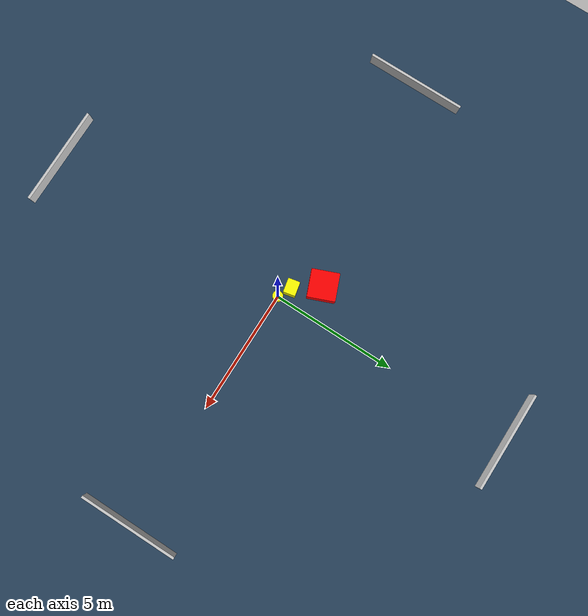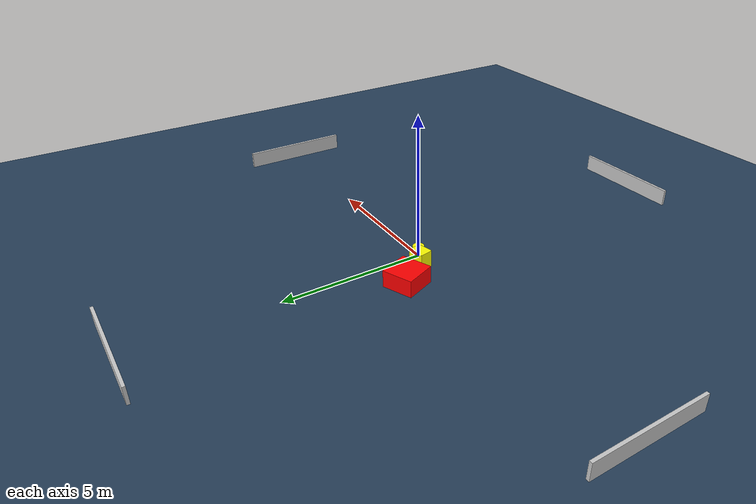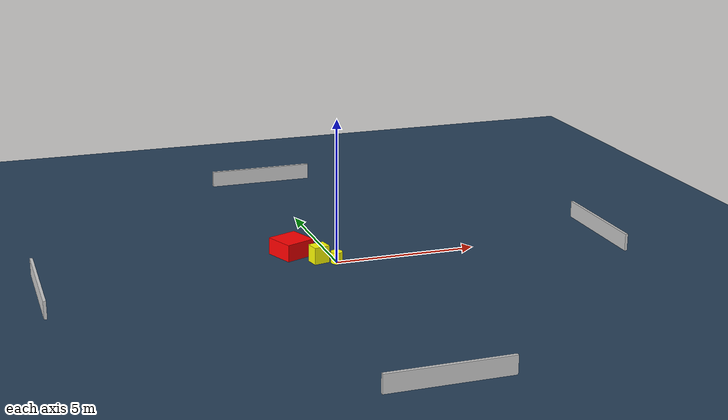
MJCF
<?xml version="1.0" ?>
<mujoco model="generated_environment">
  <option timestep="0.01" integrator="RK4" cone="elliptic"/>
  <default>
    <geom density="1"/>
  </default>
  <asset>
    <texture builtin="gradient" height="3072" name="skybox" rgb1="0.3 0.5 0.7" rgb2="0 0 0" type="skybox" width="512"/>
    <texture builtin="checker" height="300" name="groundplane" rgb1="0.2 0.3 0.4" rgb2="0.1 0.2 0.3" type="2d" width="300"/>
    <material name="groundplane" reflectance="0.2" texrepeat="5 5" texture="groundplane"/>
  </asset>
  <worldbody>
    <light dir="0 0 -1" directional="true" pos="0 0 1.5"/>
    <geom condim="3" friction="0.5 0.005 0.001" material="groundplane" name="floor" pos="0 0 0" size="0 0 0.05" type="plane"/>
    <body name="walls">
      <geom name="wall_1" condim="4" pos="-10.0 0.0 0.3" rgba="0.800000011920929 0.800000011920929 0.800000011920929 1.0" size="0.05 2.0 0.3" type="box"/>
      <geom name="wall_2" condim="4" pos="10.0 0.0 0.3" rgba="0.800000011920929 0.800000011920929 0.800000011920929 1.0" size="0.05 2.0 0.3" type="box"/>
      <geom name="wall_3" condim="4" pos="0.0 -10.0 0.3" rgba="0.800000011920929 0.800000011920929 0.800000011920929 1.0" size="2.0 0.05 0.3" type="box"/>
      <geom name="wall_4" condim="4" pos="0.0 10.0 0.3" rgba="0.800000011920929 0.800000011920929 0.800000011920929 1.0" size="2.0 0.05 0.3" type="box"/>
    </body>
    <body name="robot">
      <joint name="joint_x" type="slide" pos="0 0 0" axis="1 0 0"/>
      <joint name="joint_y" type="slide" pos="0 0 0" axis="0 1 0"/>
      <geom name="robot" type="cylinder" pos="0.0 0.0 0.2" size="0.2 0.2 0.0" mass="5.0" friction="1.0 0.005 0.0001" condim="4" rgba="1.0 1.0 0.0 1.0"/>
    </body>
    <body name="obstacle_1_movable">
      <geom name="obstacle_1_movable" condim="4" pos="-0.5403704760489705 0.2738182473335803 0.3" euler="0 0 11.760173468524808" friction="0.0 0.005 0.001" rgba="1.0 1.0 0.0 1.0" size="0.2848875451930055 0.23748186147207895 0.3" type="box" mass="0.1"/>
      <joint type="free"/>
    </body>
    <body name="obstacle_2_static">
      <geom name="obstacle_2_static" condim="4" pos="-1.246674425492476 1.2401061508990734 0.3" euler="0 0 291.9443333840243" friction="0.0 0.005 0.001" rgba="1.0 0.0 0.0 1.0" size="0.5457496968158644 0.5481721018300802 0.3" type="box"/>
    </body>
  </worldbody>
  <actuator>
    <motor name="actuator_x" joint="joint_x" gear="1" ctrlrange="-1 1"/>
    <motor name="actuator_y" joint="joint_y" gear="1" ctrlrange="-1 1"/>
  </actuator>
</mujoco>
